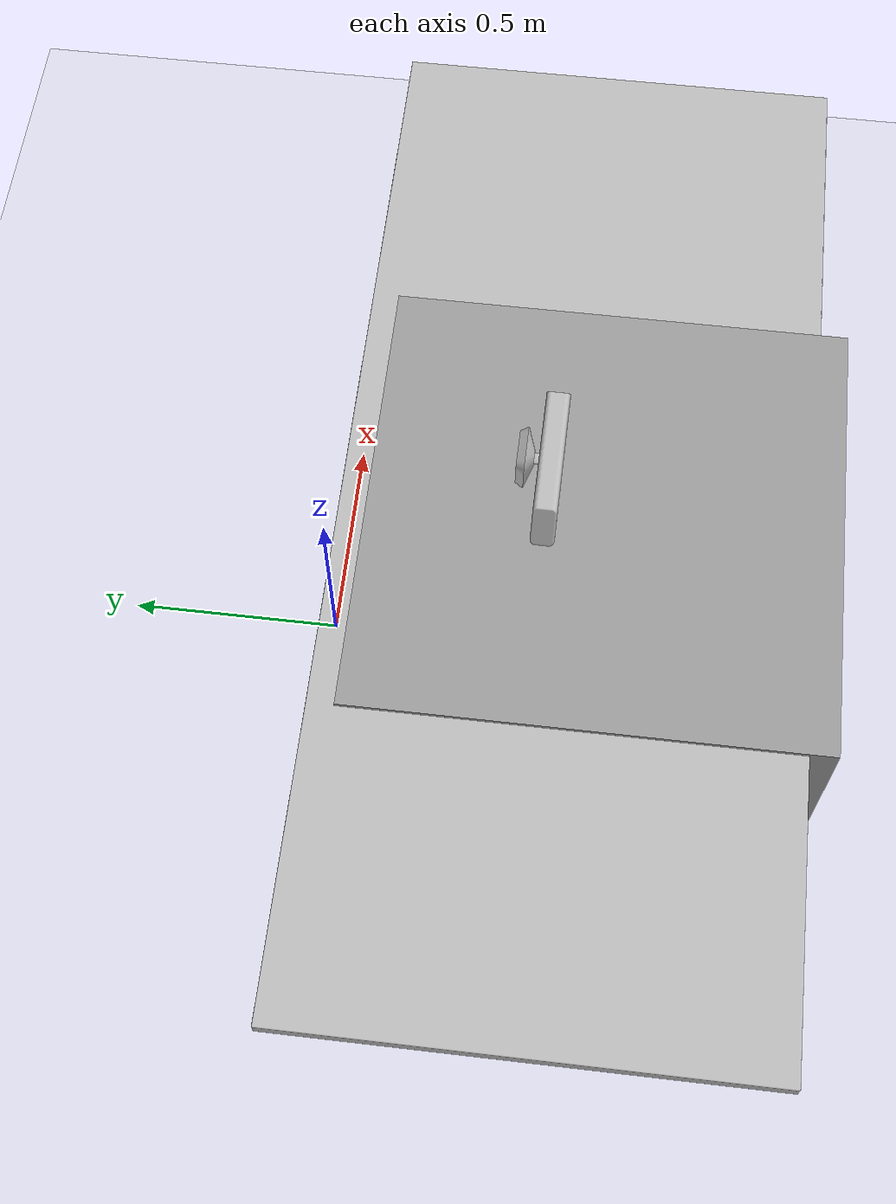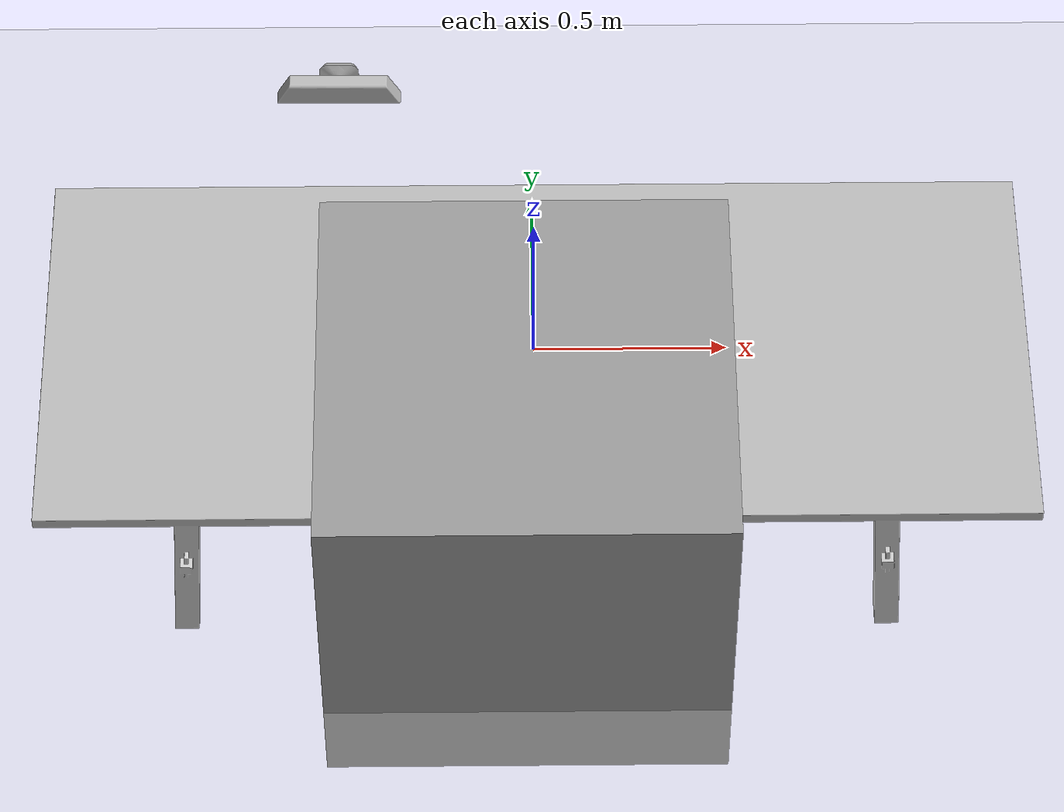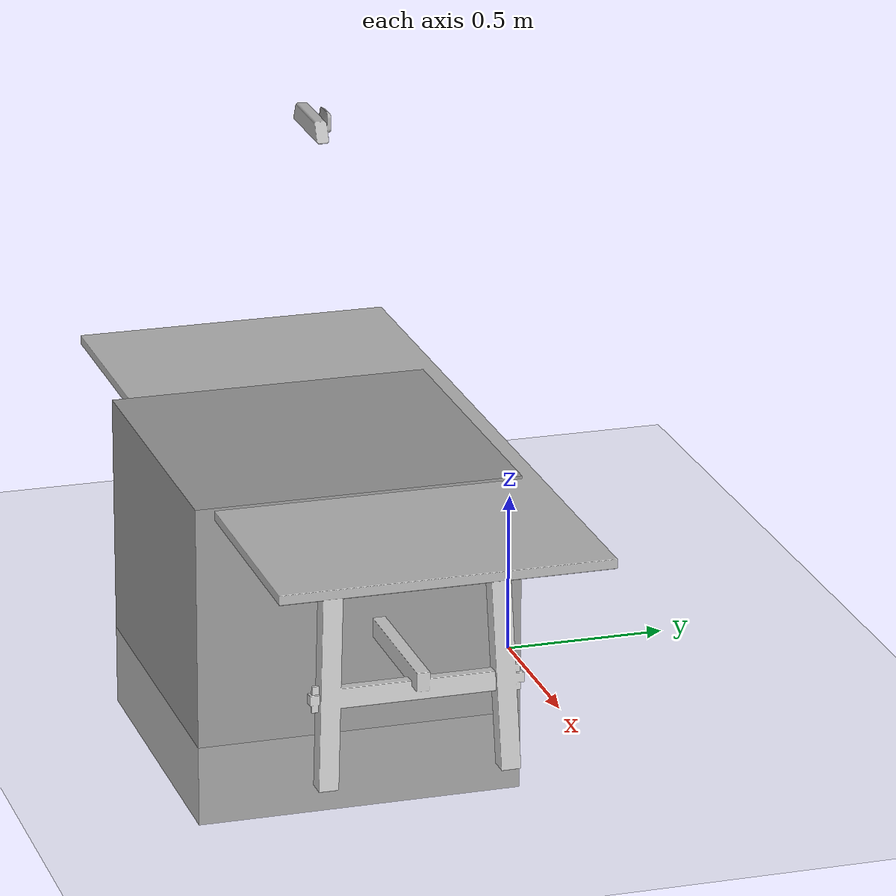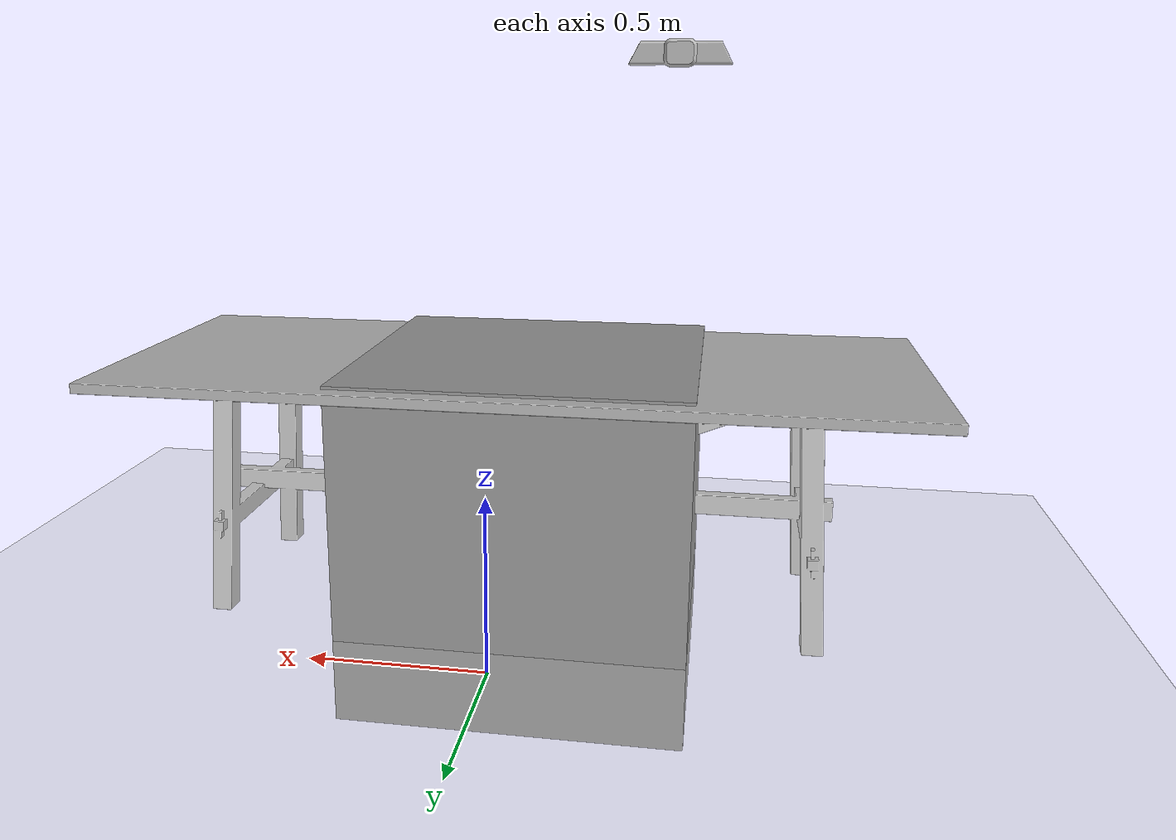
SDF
<sdf version="1.7">
 <world name="ur5_world">
  <plugin name="ros_link_attacher_plugin" filename="libgazebo_ros_link_attacher.so"/>
  <gravity>0 0 -9.81</gravity>
  <physics name="default_physics" default="0" type="ode">
   <max_step_size>0.001</max_step_size>
   <real_time_factor>1</real_time_factor>
   <real_time_update_rate>1000</real_time_update_rate>
  </physics>
  <scene><ambient>0.4 0.4 0.4 1</ambient><background>0.7 0.7 0.7 1</background><shadows>0</shadows></scene>
  <light name="sun" type="directional">
   <pose>0 0 10 0 -0 0</pose>
   <diffuse>0.8 0.8 0.8 1</diffuse>
   <specular>0.2 0.2 0.2 1</specular>
   <attenuation>
    <range>1000</range>
    <constant>0.9</constant>
    <linear>0.01</linear>
    <quadratic>0.001</quadratic>
   </attenuation>
   <direction>-0.5 0.1 -0.9</direction>
   <spot><inner_angle>0</inner_angle><outer_angle>0</outer_angle><falloff>0</falloff></spot>
  </light>
  <model name="ground_plane">
   <static>1</static>
   <link name="link">
    <collision name="collision">
     <geometry><plane><normal>0 0 1</normal><size>100 100</size></plane></geometry>
     <surface><friction><ode><mu>100</mu><mu2>50</mu2></ode></friction></surface>
    </collision>
    <visual name="visual">
     <cast_shadows>0</cast_shadows>
     <geometry><plane><normal>0 0 1</normal><size>100 100</size></plane></geometry>
     <material>
      <script><uri>file://media/materials/scripts/gazebo.material</uri><name>Gazebo/Grey</name></script>
     </material>
    </visual>
   </link>
  </model>
  <model name="modern_table">
   <static>1</static>
   <frame name="modern_table::__model__" attached_to="modern_table::link">
    <pose relative_to="__model__">0 -0.558 0 0 0 -3.14159</pose>
   </frame>
   <static>1</static>
   <link name="modern_table::link">
    <pose relative_to="modern_table::__model__">0 0 0.74 0 -0 0</pose>
    <collision name="surface">
     <pose>0 0 -0.015 0 -0 0</pose>
     <geometry><box><size>2.35 1 0.03</size></box></geometry>
    </collision>
    <visual name="visual">
     <geometry><mesh><uri>model://modern_table/meshes/modern_table.dae</uri></mesh></geometry>
     <light type="directional" name="some_light">
      <diffuse>0.7 0.7 0.7 0</diffuse>
      <specular>1 1 1 0</specular>
      <direction>-1 -1 -1</direction>
     </light>
    </visual>
   </link>
  </model>
  <model name="kinect">
   <static>1</static>
   <frame name="kinect::__model__" attached_to="kinect::link">
    <pose relative_to="__model__">-0.44 -0.5 1.58 1.58 1.57079 -0</pose>
   </frame>
   <link name="kinect::link">
    <inertial><mass>0.1</mass></inertial>
    <collision name="collision"><geometry><box><size>0.073 0.276 0.072</size></box></geometry></collision>
    <visual name="visual"><geometry><mesh><uri>model://kinect/meshes/kinect.dae</uri></mesh></geometry></visual>
    <sensor name="camera" type="depth">
     <update_rate>20</update_rate>
     <camera>
      <horizontal_fov>1.0472</horizontal_fov>
      <image><width>640</width><height>480</height><format>R8G8B8</format></image>
      <clip><near>0.05</near><far>3</far></clip>
     </camera>
     <plugin name="camera_plugin" filename="libgazebo_ros_openni_kinect.so">
      <baseline>0.2</baseline>
      <alwaysOn>1</alwaysOn>
      <updateRate>0.0</updateRate>
      <cameraName>camera_ir</cameraName>
      <imageTopicName>/camera/color/image_raw</imageTopicName>
      <cameraInfoTopicName>/camera/color/camera_info</cameraInfoTopicName>
      <depthImageTopicName>/camera/depth/image_raw</depthImageTopicName>
      <depthImageCameraInfoTopicName>/camera/depth/camera_info</depthImageCameraInfoTopicName>
      <pointCloudTopicName>/camera/depth/points</pointCloudTopicName>
      <frameName>camera_link</frameName>
      <pointCloudCutoff>0.5</pointCloudCutoff>
      <pointCloudCutoffMax>3.0</pointCloudCutoffMax>
      <distortionK1>0</distortionK1>
      <distortionK2>0</distortionK2>
      <distortionK3>0</distortionK3>
      <distortionT1>0</distortionT1>
      <distortionT2>0</distortionT2>
      <CxPrime>0</CxPrime>
      <Cx>0</Cx>
      <Cy>0</Cy>
      <focalLength>0</focalLength>
      <hackBaseline>0</hackBaseline>
     </plugin>
    </sensor>
    <pose relative_to="kinect::__model__">0 0 0 0 -0 0</pose>
   </link>
  </model>
  <magnetic_field>6e-06 2.3e-05 -4.2e-05</magnetic_field>
  <atmosphere type="adiabatic"/>
  <spherical_coordinates>
   <surface_model>EARTH_WGS84</surface_model>
   <latitude_deg>0</latitude_deg>
   <longitude_deg>0</longitude_deg>
   <elevation>0</elevation>
   <heading_deg>0</heading_deg>
  </spherical_coordinates>
  <model name="unit_box">
   <pose>-0.02571 -0.615934 0.248372 0 -0 0</pose>
   <link name="link">
    <inertial>
     <mass>1</mass>
     <inertia>
      <ixx>0.166667</ixx>
      <ixy>0</ixy>
      <ixz>0</ixz>
      <iyy>0.166667</iyy>
      <iyz>0</iyz>
      <izz>0.166667</izz>
     </inertia>
    </inertial>
    <collision name="collision"><geometry><box><size>1 1 1</size></box></geometry></collision>
    <visual name="visual">
     <geometry><box><size>1 1 1</size></box></geometry>
     <material>
      <script><name>Gazebo/Grey</name><uri>file://media/materials/scripts/gazebo.material</uri></script>
     </material>
    </visual>
   </link>
  </model>
 </world>
</sdf>
